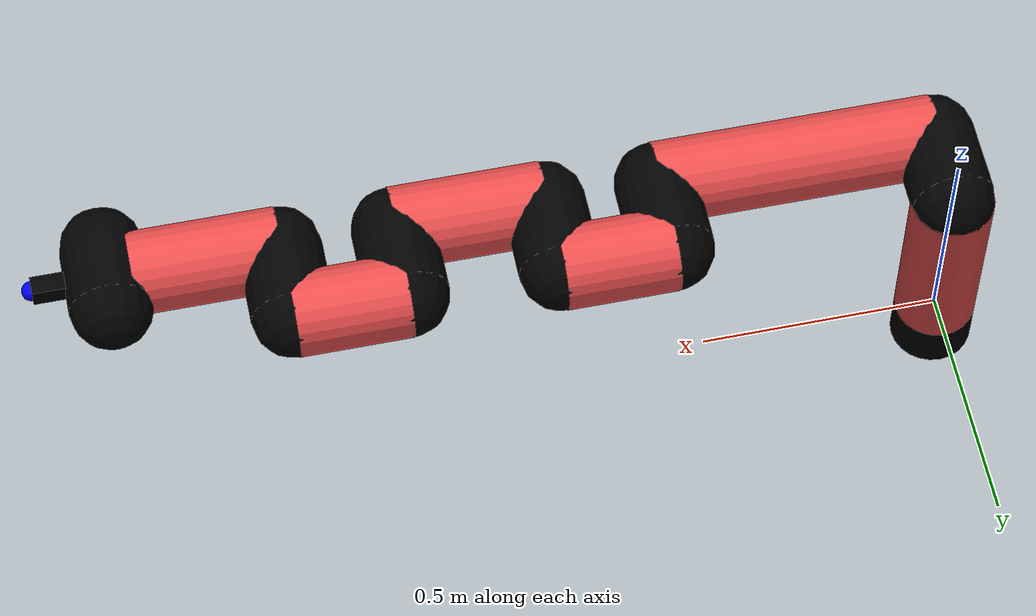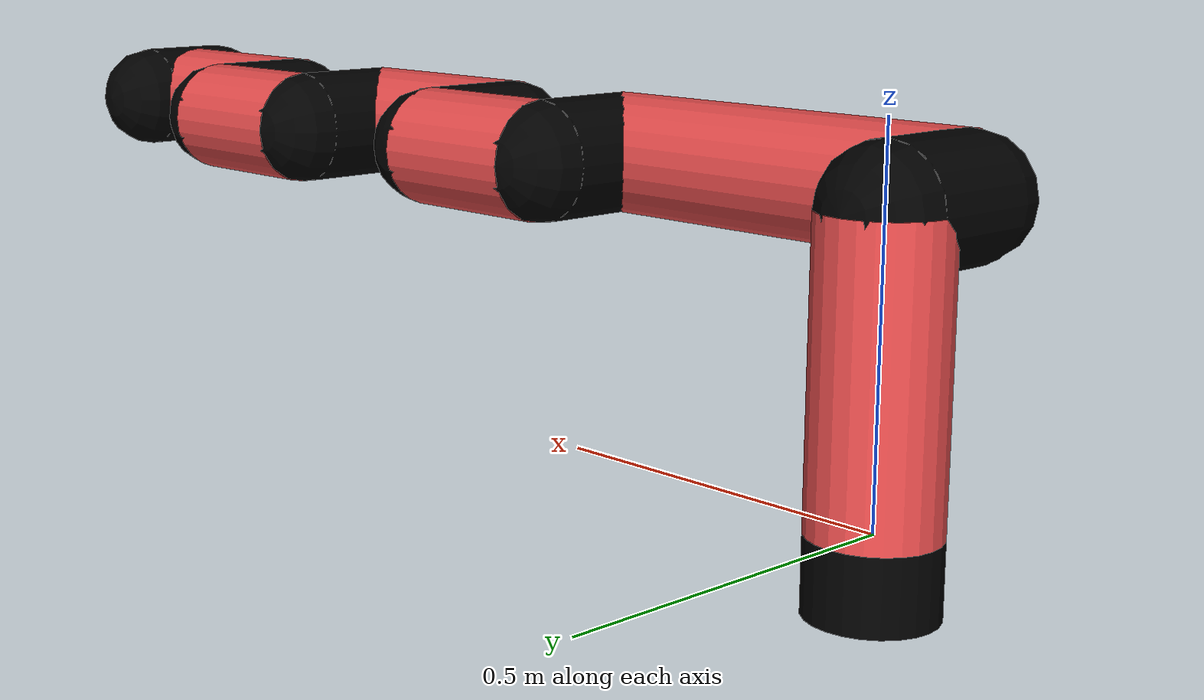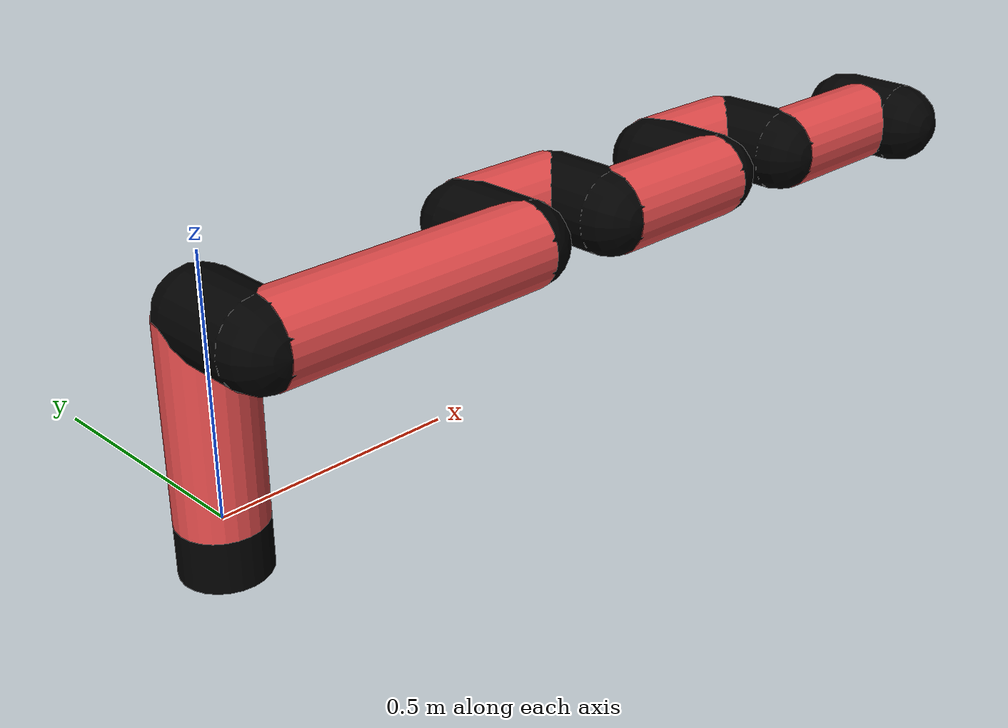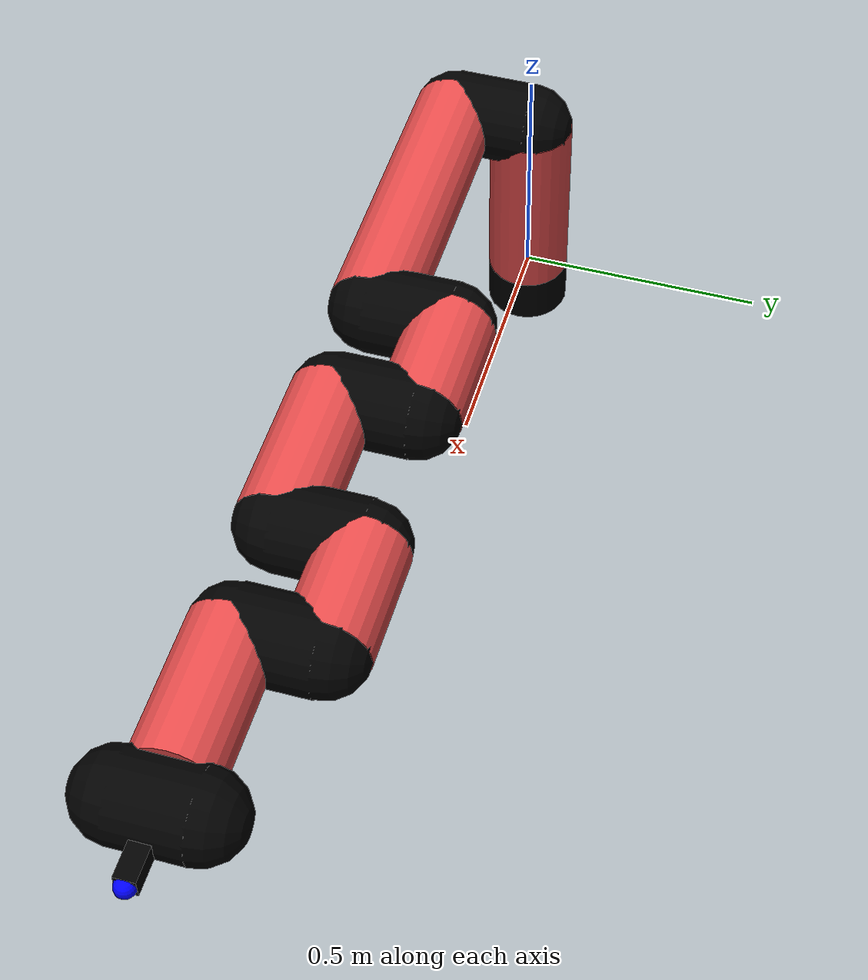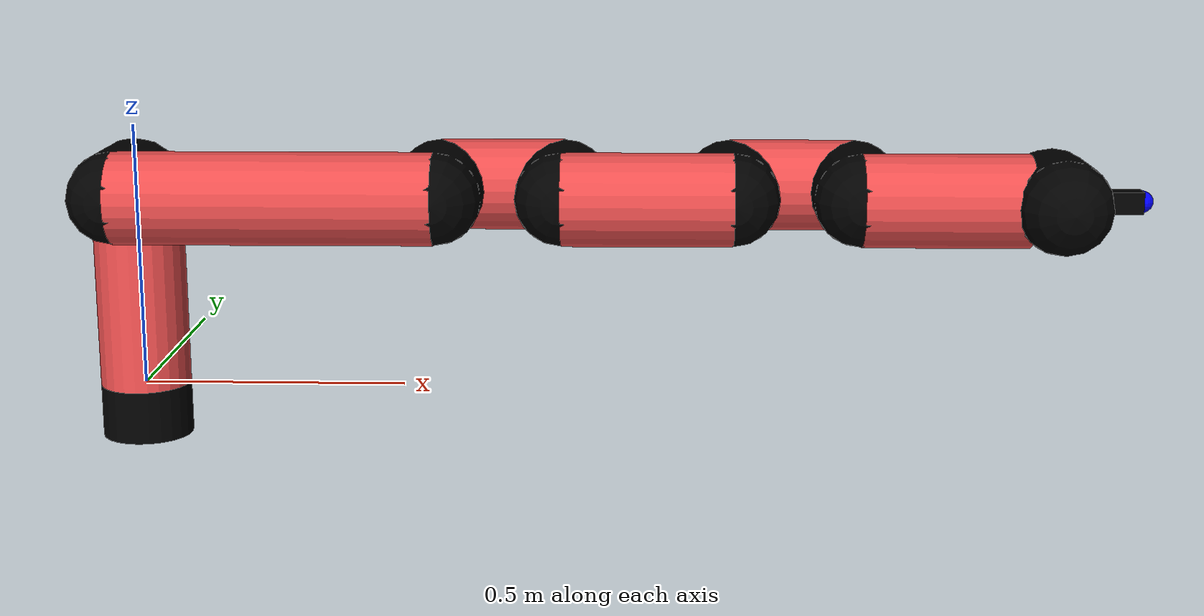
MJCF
<mujoco model="manipulator">
		<compiler angle="degree" coordinate="local" inertiafromgeom="auto" meshdir="meshes/"/>
		<option gravity="0 0 0" integrator="RK4" iterations="30" timestep="0.01"/>

		<default>
		<joint armature="1" limited="true" stiffness="10" damping="15" frictionloss="5.0"/>
		<geom conaffinity="1" condim="3" contype="1" friction=".5 .1 .1" margin="0.002"/>
		<motor ctrllimited="true"/>
		<position ctrllimited="true"/>
		</default>

		<asset>
		<texture builtin="gradient" height="100" rgb1="1.0 1.0 1.0" rgb2="1.0 1.0 1.0" type="skybox" width="100"/>
		<texture builtin="flat" height="32" name="arm_tex" rgb1="0.9 0.3 0.3" type="2d" width="32"/>
		<texture builtin="flat" height="32" name="gripper_tex" rgb1="0.0 0.0 0.0" type="cube" width="32"/>

		<material name="arm_mat" shininess="0.1" specular="0.1" texture="arm_tex"/>
		<material name="gripper_mat" shininess="1" specular="1" texture="gripper_tex"/>
		</asset>

		<worldbody>
		<light cutoff="45" diffuse=".8 .8 .8" dir="0 0.16 -1" directional="false" name="light" pos="0 -2.0 8.0" specular="0.3 0.3 0.3"/>

		<body name="base_link" pos="0 0 -0.1">
		<geom fromto="0 0 0 0 0 0.1" material="arm_mat" name="base_link" rgba="0.0 0.0 0.0 1" size="0.085" type="cylinder"/>
		</body>

		<body name="l1" pos="0 0 0">
<geom fromto="0 0 0 0 0 0.39" material="arm_mat" name="l1" rgba="0.9 0.3 0.3 1" size="0.085" type="cylinder"/>
<geom fromto="0 0 0.39 0 -0.16 0.39" material="arm_mat" name="l1_ex" rgba="0.0 0.0 0.0 1" size="0.085" type="capsule"/>
<joint axis="0 0 1" name="j1" pos="0 0 0" range="-90 90" damping="30.82" frictionloss="9.94"/>

<body name="l2" pos="0 -0.16 0.39">
<geom fromto="0 0 0 0.58 0 0" material="arm_mat" name="l2" rgba="0.9 0.3 0.3 1" size="0.085" type="cylinder"/>
<geom fromto="0.58 0 0 0.58 0.16 0" material="arm_mat" name="l2_ex" rgba="0.0 0.0 0.0 1" size="0.085" type="capsule"/>
<joint axis="0.0 1.0 0.0" name="j2" pos="0 0 0" range="-90 60" damping="31.27" frictionloss="9.3"/>

<body name="l3" pos="0.58 0.16 0">
<geom fromto="0 0 0 0.23 0 0" material="arm_mat" name="l3" rgba="0.9 0.3 0.3 1" size="0.085" type="cylinder"/>
<geom fromto="0.23 0 0 0.23 -0.16 0" material="arm_mat" name="l3_ex" rgba="0.0 0.0 0.0 1" size="0.085" type="capsule"/>
<joint axis="0.0 1.0 0.0" name="j3" pos="0 0 0" range="-30 60" damping="35.54" frictionloss="7.71"/>

<body name="l4" pos="0.23 -0.16 0">
<geom fromto="0 0 0 0.31 0 0" material="arm_mat" name="l4" rgba="0.9 0.3 0.3 1" size="0.085" type="cylinder"/>
<geom fromto="0.31 0 0 0.31 0.16 0" material="arm_mat" name="l4_ex" rgba="0.0 0.0 0.0 1" size="0.085" type="capsule"/>
<joint axis="0.0 1.0 0.0" name="j4" pos="0 0 0" range="-30 60" damping="38.37" frictionloss="11.57"/>

<body name="l5" pos="0.31 0.16 0">
<geom fromto="0 0 0 0.23 0 0" material="arm_mat" name="l5" rgba="0.9 0.3 0.3 1" size="0.085" type="cylinder"/>
<geom fromto="0.23 0 0 0.23 -0.16 0" material="arm_mat" name="l5_ex" rgba="0.0 0.0 0.0 1" size="0.085" type="capsule"/>
<joint axis="0.0 1.0 0.0" name="j5" pos="0 0 0" range="-30 60" damping="30.01" frictionloss="10.44"/>

<body name="l6" pos="0.23 -0.16 0">
<geom fromto="0 0 0 0.3 0 0" material="arm_mat" name="l6" rgba="0.9 0.3 0.3 1" size="0.085" type="cylinder"/>
<joint axis="0.0 1.0 0.0" name="j6" pos="0 0 0" range="-30 60" damping="27.42" frictionloss="10.17"/>

<body name="gripper" pos="0.3 0 0">
<geom fromto="0.05 -0.07 0 0.05 0.07 0" material="gripper_mat" name="gripper" rgba="0.0 0.0 0.0 1" size="0.085" type="capsule"/><joint axis="1 0 0" name="j7" pos="0 0 0" range="-90 90" damping="15" frictionloss="5.0"/><body name="finger" pos="0.1 0 0">
<geom fromto="0 0.0 0 0.1 0.0 0" material="gripper_mat" name="finger" rgba="0.0 0.0 0.0 1" size="0.020 0.06 0.06" type="box"/>
</body>
<site name="current" pos="0.2 0. 0.0" rgba="0. 0. 1.0 1" size="0.02" type="sphere"/>
</body>
</body>
</body>
</body>
</body>
</body>
</body>
</worldbody>
<actuator>
<motor ctrllimited="true" ctrlrange="-1.0 1.0" joint="j1" gear="97.07"/>
<motor ctrllimited="true" ctrlrange="-1.0 1.0" joint="j2" gear="69.63"/>
<motor ctrllimited="true" ctrlrange="-1.0 1.0" joint="j3" gear="91.87"/>
<motor ctrllimited="true" ctrlrange="-1.0 1.0" joint="j4" gear="102.73"/>
<motor ctrllimited="true" ctrlrange="-1.0 1.0" joint="j5" gear="70.94"/>
<motor ctrllimited="true" ctrlrange="-1.0 1.0" joint="j6" gear="56.04"/>
<motor ctrllimited="true" ctrlrange="-1.0 1.0" joint="j7" gear="80"/>
</actuator>
</mujoco>
